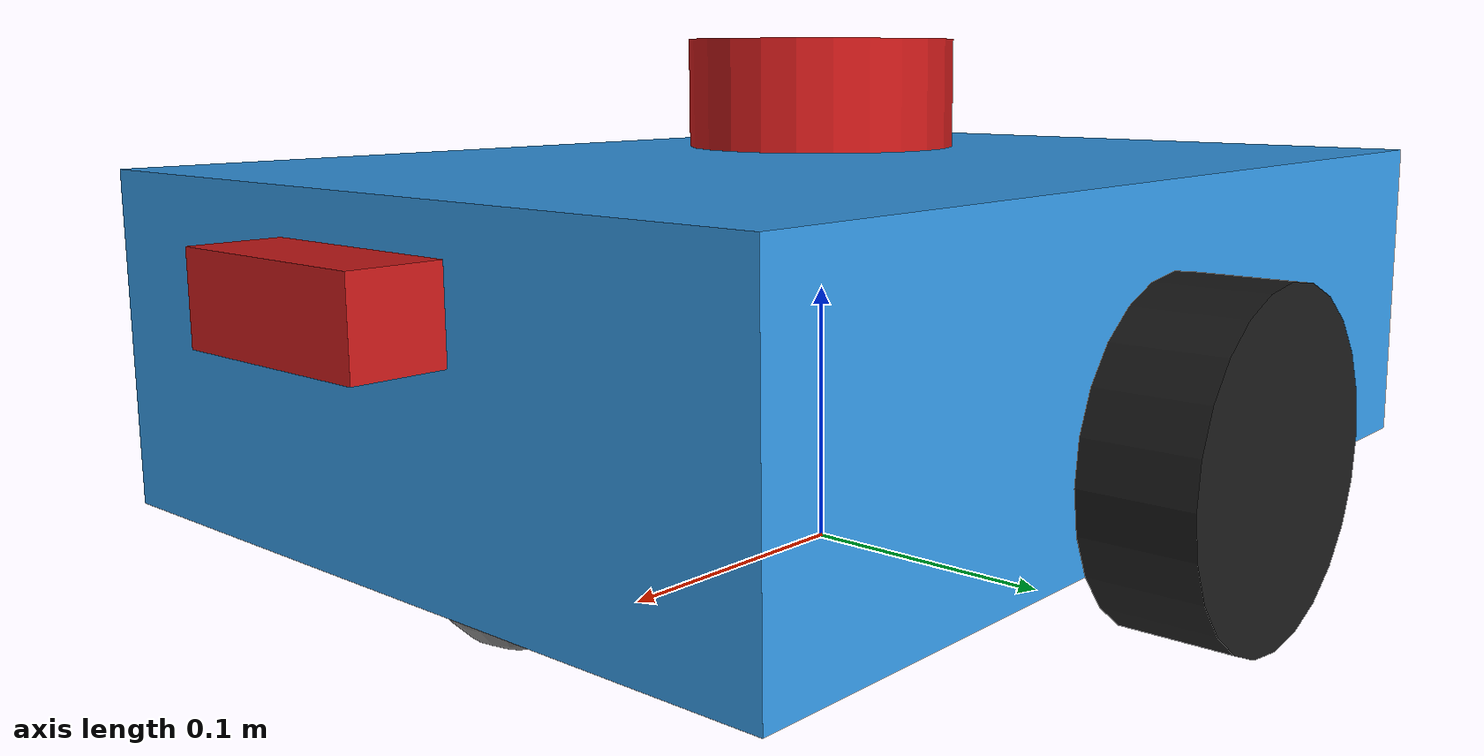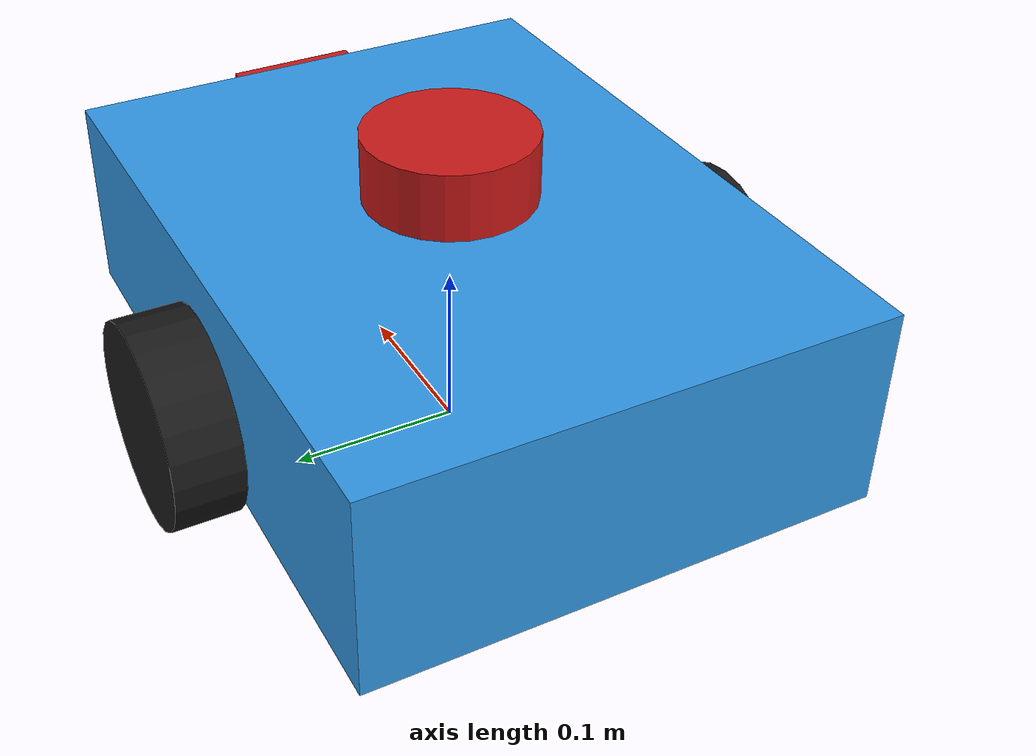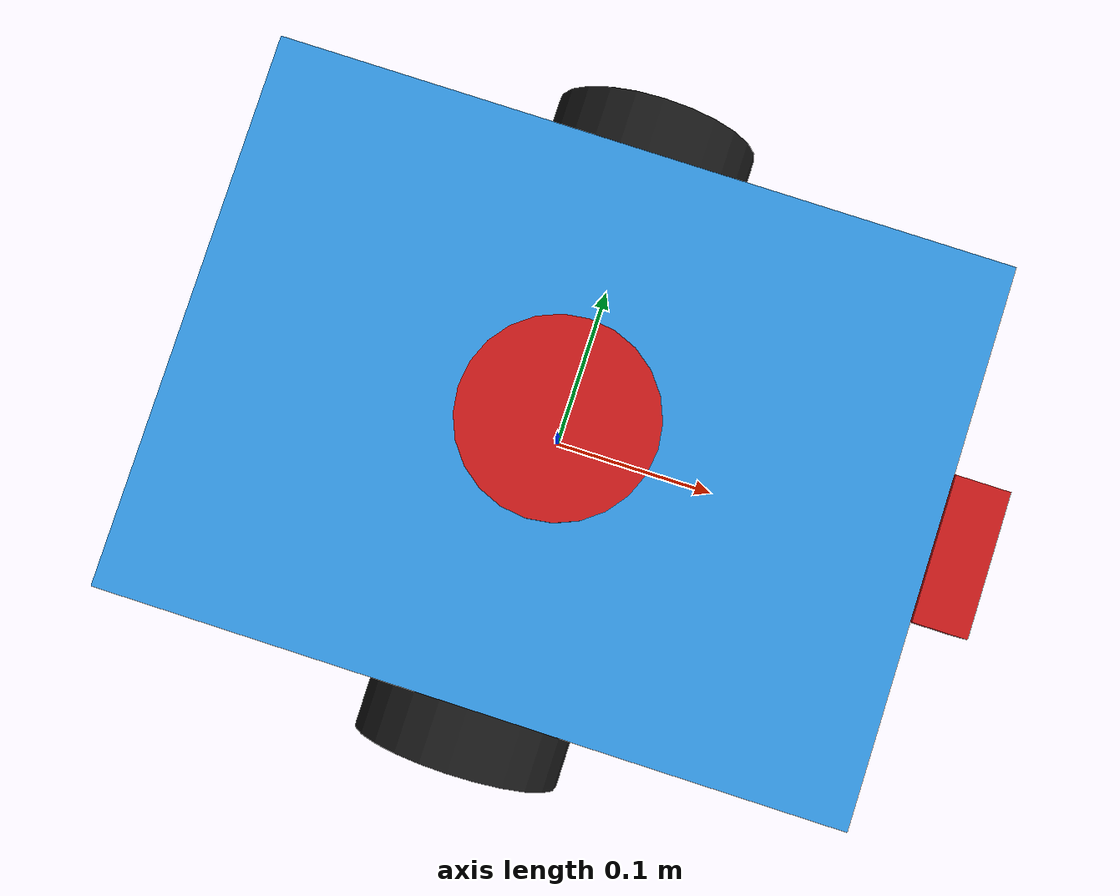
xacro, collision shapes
<?xml version="1.0"?>
<robot xmlns:xacro="http://www.ros.org/wiki/xacro" name="two_wheeled_robot">

    <!-- XACRO PROPERTIES (Dimensions in meters, mass in kg)                  -->

    <!-- Main Box Chassis -->
    <xacro:property name="base_length" value="0.40"/>
    <xacro:property name="base_width" value="0.30"/>
    <xacro:property name="base_height" value="0.12"/>
    <xacro:property name="base_mass" value="5.0"/>

    <!-- Wheels -->
    <xacro:property name="wheel_radius" value="0.06"/>
    <xacro:property name="wheel_length" value="0.04"/>
    <xacro:property name="wheel_mass" value="0.5"/>
    <xacro:property name="wheel_offset_y" value="${(base_width / 2) + (wheel_length / 2)}"/>
    <xacro:property name="wheel_offset_z" value="0.03"/>

    <!-- Caster Wheel -->
    <xacro:property name="caster_radius" value="0.03"/>
    <xacro:property name="caster_mass" value="0.2"/>
    <xacro:property name="caster_offset_x" value="0.15"/>

    <!-- INERTIAL MACROS                                                      -->
    <xacro:macro name="cylinder_inertia" params="mass radius length">
        <inertial>
            <mass value="${mass}"/>
            <inertia ixx="${(1/12) * mass * (3 * radius*radius + length*length)}" ixy="0.0" ixz="0.0"
                     iyy="${(1/12) * mass * (3 * radius*radius + length*length)}" iyz="0.0"
                     izz="${(1/2) * mass * radius*radius}"/>
        </inertial>
    </xacro:macro>

    <xacro:macro name="sphere_inertia" params="mass radius">
        <inertial>
            <mass value="${mass}"/>
            <inertia ixx="${(2/5) * mass * radius*radius}" ixy="0.0" ixz="0.0"
                     iyy="${(2/5) * mass * radius*radius}" iyz="0.0"
                     izz="${(2/5) * mass * radius*radius}"/>
        </inertial>
    </xacro:macro>

    <xacro:macro name="box_inertia" params="mass x y z">
        <inertial>
            <mass value="${mass}"/>
            <inertia ixx="${(1/12) * mass * (y*y + z*z)}" ixy="0.0" ixz="0.0"
                     iyy="${(1/12) * mass * (x*x + z*z)}" iyz="0.0"
                     izz="${(1/12) * mass * (x*x + y*y)}"/>
        </inertial>
    </xacro:macro>

    <!-- MATERIALS                                                            -->
    <material name="blue"><color rgba="0.2 0.6 0.9 1.0"/></material>
    <material name="black"><color rgba="0.1 0.1 0.1 1.0"/></material>
    <material name="grey"><color rgba="0.5 0.5 0.5 1.0"/></material>
    <material name="red"><color rgba="0.8 0.1 0.1 1.0"/></material>

    <!-- ROBOT LINKS & JOINTS                                                 -->

    <!-- 1. BASE FOOTPRINT -->
    <link name="base_footprint"/>

    <!-- 2. BASE LINK -->
    <joint name="base_footprint_joint" type="fixed">
        <parent link="base_footprint"/>
        <child link="base_link"/>
        <origin xyz="0 0 ${wheel_radius + wheel_offset_z}" rpy="0 0 0"/>
    </joint>

    <link name="base_link">
        <visual>
            <origin xyz="0 0 0" rpy="0 0 0"/>
            <geometry>
                <box size="${base_length} ${base_width} ${base_height}"/>
            </geometry>
            <material name="blue"/>
        </visual>
        <collision>
            <origin xyz="0 0 0" rpy="0 0 0"/>
            <geometry>
                <box size="${base_length} ${base_width} ${base_height}"/>
            </geometry>
        </collision>
        <xacro:box_inertia mass="${base_mass}" x="${base_length}" y="${base_width}" z="${base_height}"/>
    </link>

    <!-- 3 & 4. LEFT AND RIGHT WHEELS -->
    <xacro:macro name="wheel" params="prefix side">
        <joint name="${prefix}_wheel_joint" type="continuous">
            <parent link="base_link"/>
            <child link="${prefix}_wheel"/>
            <origin xyz="0 ${side * wheel_offset_y} -${wheel_offset_z}" rpy="-${pi/2} 0 0"/>
            <axis xyz="0 0 1"/>
        </joint>

        <link name="${prefix}_wheel">
            <visual>
                <geometry>
                    <cylinder radius="${wheel_radius}" length="${wheel_length}"/>
                </geometry>
                <material name="black"/>
            </visual>
            <collision>
                <geometry>
                    <cylinder radius="${wheel_radius}" length="${wheel_length}"/>
                </geometry>
            </collision>
            <xacro:cylinder_inertia mass="${wheel_mass}" radius="${wheel_radius}" length="${wheel_length}"/>
        </link>
    </xacro:macro>

    <xacro:wheel prefix="left" side="1"/>
    <xacro:wheel prefix="right" side="-1"/>

    <!-- 5. CASTER WHEEL -->
    <joint name="caster_wheel_joint" type="fixed">
        <parent link="base_link"/>
        <child link="caster_wheel"/>
        <origin xyz="${caster_offset_x} 0 -${wheel_radius + wheel_offset_z - caster_radius}" rpy="0 0 0"/>
    </joint>

    <link name="caster_wheel">
        <visual>
            <geometry>
                <sphere radius="${caster_radius}"/>
            </geometry>
            <material name="grey"/>
        </visual>
        <collision>
            <geometry>
                <sphere radius="${caster_radius}"/>
            </geometry>
        </collision>
        <xacro:sphere_inertia mass="${caster_mass}" radius="${caster_radius}"/>
    </link>

    <!-- 6. LIDAR LINK -->
    <joint name="lidar_joint" type="fixed">
        <parent link="base_link"/>
        <child link="lidar_link"/>
        <!-- Added a +0.025 Z-offset to raise the mesh out of the chassis -->
        <origin xyz="0 0 ${base_height/2 + 0.025}" rpy="0 0 0"/>
    </joint>

    <link name="lidar_link">
        <visual>
            <origin xyz="0 0 0" rpy="0 0 0"/>
            <geometry>
              <mesh filename="package://robot_description_youssef_ahmed/meshes/lidar.stl" scale="1 1 1"/>
            </geometry>
            <material name="red"/>
        </visual>
        <collision>
            <origin xyz="0 0 0" rpy="0 0 0"/>
            <geometry>
                <cylinder radius="0.05" length="0.04"/>
            </geometry>
        </collision>
        <xacro:box_inertia mass="0.15" x="0.1" y="0.1" z="0.08"/>
    </link>

    <!-- 7. CAMERA LINK -->
    <joint name="camera_joint" type="fixed">
        <parent link="base_link"/>
        <child link="camera_link"/>
        <!-- Added a +0.02 X-offset to push the mesh forward out of the chassis -->
        <origin xyz="${base_length/2 + 0.02} 0 ${base_height/4}" rpy="0 0 0"/>
    </joint>

    <link name="camera_link">
        <visual>
            <origin xyz="0 0 0" rpy="0 0 0"/>
            <geometry>
                <mesh filename="package://robot_description_youssef_ahmed/meshes/zed.stl" scale="1 1 1"/>
            </geometry>
            <material name="red"/>
        </visual>
        <collision>
            <origin xyz="0 0 0" rpy="0 0 0"/>
            <geometry>
                <box size="0.03 0.08 0.03"/>
            </geometry>
        </collision>
        <xacro:box_inertia mass="0.05" x="0.03" y="0.08" z="0.03"/>
    </link>

</robot>
